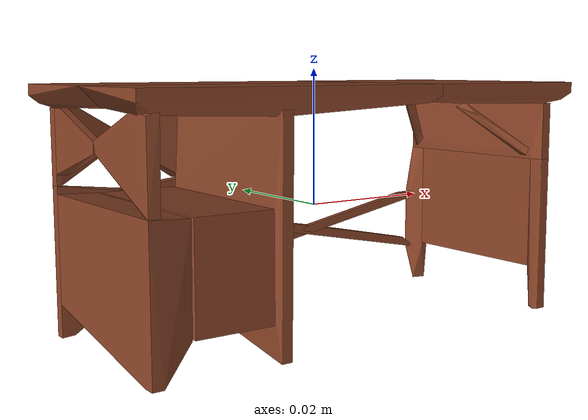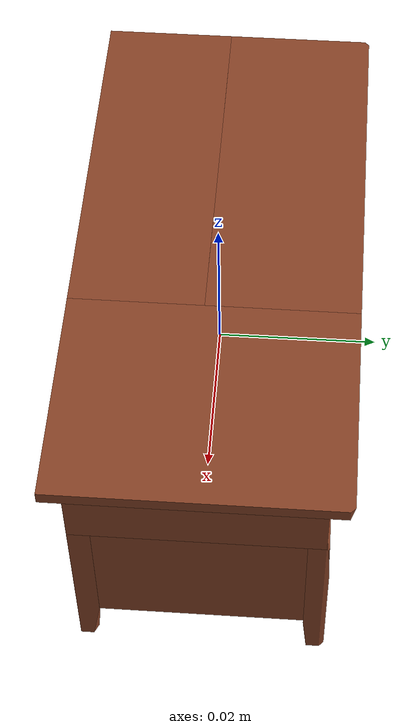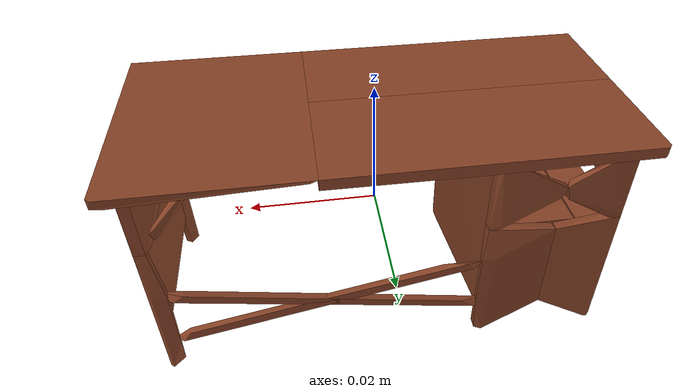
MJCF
<mujoco model="shapenetsem24">
  <asset>
    <mesh file="meshes/shapenetsem24/shapenetsem24_0.stl" name="shapenetsem24_0" scale="0.85 0.85 0.85"/>
    <mesh file="meshes/shapenetsem24/shapenetsem24_1.stl" name="shapenetsem24_1" scale="0.85 0.85 0.85"/>
    <mesh file="meshes/shapenetsem24/shapenetsem24_2.stl" name="shapenetsem24_2" scale="0.85 0.85 0.85"/>
    <mesh file="meshes/shapenetsem24/shapenetsem24_3.stl" name="shapenetsem24_3" scale="0.85 0.85 0.85"/>
    <mesh file="meshes/shapenetsem24/shapenetsem24_4.stl" name="shapenetsem24_4" scale="0.85 0.85 0.85"/>
    <mesh file="meshes/shapenetsem24/shapenetsem24_5.stl" name="shapenetsem24_5" scale="0.85 0.85 0.85"/>
    <mesh file="meshes/shapenetsem24/shapenetsem24_6.stl" name="shapenetsem24_6" scale="0.85 0.85 0.85"/>
    <mesh file="meshes/shapenetsem24/shapenetsem24_7.stl" name="shapenetsem24_7" scale="0.85 0.85 0.85"/>
    <mesh file="meshes/shapenetsem24/shapenetsem24_8.stl" name="shapenetsem24_8" scale="0.85 0.85 0.85"/>
    <mesh file="meshes/shapenetsem24/shapenetsem24_9.stl" name="shapenetsem24_9" scale="0.85 0.85 0.85"/>
    <mesh file="meshes/shapenetsem24/shapenetsem24_10.stl" name="shapenetsem24_10" scale="0.85 0.85 0.85"/>
    <mesh file="meshes/shapenetsem24/shapenetsem24_11.stl" name="shapenetsem24_11" scale="0.85 0.85 0.85"/>
    <mesh file="meshes/shapenetsem24/shapenetsem24_12.stl" name="shapenetsem24_12" scale="0.85 0.85 0.85"/>
    <mesh file="meshes/shapenetsem24/shapenetsem24_13.stl" name="shapenetsem24_13" scale="0.85 0.85 0.85"/>
    <mesh file="meshes/shapenetsem24/shapenetsem24_14.stl" name="shapenetsem24_14" scale="0.85 0.85 0.85"/>
    <mesh file="meshes/shapenetsem24/shapenetsem24_15.stl" name="shapenetsem24_15" scale="0.85 0.85 0.85"/>
    <mesh file="meshes/shapenetsem24/shapenetsem24_16.stl" name="shapenetsem24_16" scale="0.85 0.85 0.85"/>
    <mesh file="meshes/shapenetsem24/shapenetsem24_17.stl" name="shapenetsem24_17" scale="0.85 0.85 0.85"/>
    <mesh file="meshes/shapenetsem24/shapenetsem24_18.stl" name="shapenetsem24_18" scale="0.85 0.85 0.85"/>
    <mesh file="meshes/shapenetsem24/shapenetsem24_19.stl" name="shapenetsem24_19" scale="0.85 0.85 0.85"/>
    <texture file="../textures/texture24-0.png" type="2d" name="tex-sem24"/>
    <material name="sem24" reflectance="0.7" texrepeat="90 90" texture="tex-sem24" texuniform="true"/>
  </asset>
  <worldbody>
    <body>
      <body name="collision">
        <geom pos="0 0 0" mesh="shapenetsem24_0" type="mesh" solimp="0.998 0.998 0.001" solref="0.001 1" density="100" friction="0.95 0.3 0.1" rgba="0.53 0.26 0.15 1" group="1" condim="4"/>
        <geom pos="0 0 0" mesh="shapenetsem24_1" type="mesh" solimp="0.998 0.998 0.001" solref="0.001 1" density="100" friction="0.95 0.3 0.1" rgba="0.53 0.26 0.15 1" group="1" condim="4"/>
        <geom pos="0 0 0" mesh="shapenetsem24_2" type="mesh" solimp="0.998 0.998 0.001" solref="0.001 1" density="100" friction="0.95 0.3 0.1" rgba="0.53 0.26 0.15 1" group="1" condim="4"/>
        <geom pos="0 0 0" mesh="shapenetsem24_3" type="mesh" solimp="0.998 0.998 0.001" solref="0.001 1" density="100" friction="0.95 0.3 0.1" rgba="0.53 0.26 0.15 1" group="1" condim="4"/>
        <geom pos="0 0 0" mesh="shapenetsem24_4" type="mesh" solimp="0.998 0.998 0.001" solref="0.001 1" density="100" friction="0.95 0.3 0.1" rgba="0.53 0.26 0.15 1" group="1" condim="4"/>
        <geom pos="0 0 0" mesh="shapenetsem24_5" type="mesh" solimp="0.998 0.998 0.001" solref="0.001 1" density="100" friction="0.95 0.3 0.1" rgba="0.53 0.26 0.15 1" group="1" condim="4"/>
        <geom pos="0 0 0" mesh="shapenetsem24_6" type="mesh" solimp="0.998 0.998 0.001" solref="0.001 1" density="100" friction="0.95 0.3 0.1" rgba="0.53 0.26 0.15 1" group="1" condim="4"/>
        <geom pos="0 0 0" mesh="shapenetsem24_7" type="mesh" solimp="0.998 0.998 0.001" solref="0.001 1" density="100" friction="0.95 0.3 0.1" rgba="0.53 0.26 0.15 1" group="1" condim="4"/>
        <geom pos="0 0 0" mesh="shapenetsem24_8" type="mesh" solimp="0.998 0.998 0.001" solref="0.001 1" density="100" friction="0.95 0.3 0.1" rgba="0.53 0.26 0.15 1" group="1" condim="4"/>
        <geom pos="0 0 0" mesh="shapenetsem24_9" type="mesh" solimp="0.998 0.998 0.001" solref="0.001 1" density="100" friction="0.95 0.3 0.1" rgba="0.53 0.26 0.15 1" group="1" condim="4"/>
        <geom pos="0 0 0" mesh="shapenetsem24_10" type="mesh" solimp="0.998 0.998 0.001" solref="0.001 1" density="100" friction="0.95 0.3 0.1" rgba="0.53 0.26 0.15 1" group="1" condim="4"/>
        <geom pos="0 0 0" mesh="shapenetsem24_11" type="mesh" solimp="0.998 0.998 0.001" solref="0.001 1" density="100" friction="0.95 0.3 0.1" rgba="0.53 0.26 0.15 1" group="1" condim="4"/>
        <geom pos="0 0 0" mesh="shapenetsem24_12" type="mesh" solimp="0.998 0.998 0.001" solref="0.001 1" density="100" friction="0.95 0.3 0.1" rgba="0.53 0.26 0.15 1" group="1" condim="4"/>
        <geom pos="0 0 0" mesh="shapenetsem24_13" type="mesh" solimp="0.998 0.998 0.001" solref="0.001 1" density="100" friction="0.95 0.3 0.1" rgba="0.53 0.26 0.15 1" group="1" condim="4"/>
        <geom pos="0 0 0" mesh="shapenetsem24_14" type="mesh" solimp="0.998 0.998 0.001" solref="0.001 1" density="100" friction="0.95 0.3 0.1" rgba="0.53 0.26 0.15 1" group="1" condim="4"/>
        <geom pos="0 0 0" mesh="shapenetsem24_15" type="mesh" solimp="0.998 0.998 0.001" solref="0.001 1" density="100" friction="0.95 0.3 0.1" rgba="0.53 0.26 0.15 1" group="1" condim="4"/>
        <geom pos="0 0 0" mesh="shapenetsem24_16" type="mesh" solimp="0.998 0.998 0.001" solref="0.001 1" density="100" friction="0.95 0.3 0.1" rgba="0.53 0.26 0.15 1" group="1" condim="4"/>
        <geom pos="0 0 0" mesh="shapenetsem24_17" type="mesh" solimp="0.998 0.998 0.001" solref="0.001 1" density="100" friction="0.95 0.3 0.1" rgba="0.53 0.26 0.15 1" group="1" condim="4"/>
        <geom pos="0 0 0" mesh="shapenetsem24_18" type="mesh" solimp="0.998 0.998 0.001" solref="0.001 1" density="100" friction="0.95 0.3 0.1" rgba="0.53 0.26 0.15 1" group="1" condim="4"/>
        <geom pos="0 0 0" mesh="shapenetsem24_19" type="mesh" solimp="0.998 0.998 0.001" solref="0.001 1" density="100" friction="0.95 0.3 0.1" rgba="0.53 0.26 0.15 1" group="1" condim="4"/>
      </body>
      <body name="visual">
        <geom pos="0 0 0" mesh="shapenetsem24_0" type="mesh" rgba="0 1 0 1" conaffinity="0" contype="0" group="0" mass="0.0001"/>
        <geom pos="0 0 0" mesh="shapenetsem24_1" type="mesh" rgba="0 1 0 1" conaffinity="0" contype="0" group="0" mass="0.0001"/>
        <geom pos="0 0 0" mesh="shapenetsem24_2" type="mesh" rgba="0 1 0 1" conaffinity="0" contype="0" group="0" mass="0.0001"/>
        <geom pos="0 0 0" mesh="shapenetsem24_3" type="mesh" rgba="0 1 0 1" conaffinity="0" contype="0" group="0" mass="0.0001"/>
        <geom pos="0 0 0" mesh="shapenetsem24_4" type="mesh" rgba="0 1 0 1" conaffinity="0" contype="0" group="0" mass="0.0001"/>
        <geom pos="0 0 0" mesh="shapenetsem24_5" type="mesh" rgba="0 1 0 1" conaffinity="0" contype="0" group="0" mass="0.0001"/>
        <geom pos="0 0 0" mesh="shapenetsem24_6" type="mesh" rgba="0 1 0 1" conaffinity="0" contype="0" group="0" mass="0.0001"/>
        <geom pos="0 0 0" mesh="shapenetsem24_7" type="mesh" rgba="0 1 0 1" conaffinity="0" contype="0" group="0" mass="0.0001"/>
        <geom pos="0 0 0" mesh="shapenetsem24_8" type="mesh" rgba="0 1 0 1" conaffinity="0" contype="0" group="0" mass="0.0001"/>
        <geom pos="0 0 0" mesh="shapenetsem24_9" type="mesh" rgba="0 1 0 1" conaffinity="0" contype="0" group="0" mass="0.0001"/>
        <geom pos="0 0 0" mesh="shapenetsem24_10" type="mesh" rgba="0 1 0 1" conaffinity="0" contype="0" group="0" mass="0.0001"/>
        <geom pos="0 0 0" mesh="shapenetsem24_11" type="mesh" rgba="0 1 0 1" conaffinity="0" contype="0" group="0" mass="0.0001"/>
        <geom pos="0 0 0" mesh="shapenetsem24_12" type="mesh" rgba="0 1 0 1" conaffinity="0" contype="0" group="0" mass="0.0001"/>
        <geom pos="0 0 0" mesh="shapenetsem24_13" type="mesh" rgba="0 1 0 1" conaffinity="0" contype="0" group="0" mass="0.0001"/>
        <geom pos="0 0 0" mesh="shapenetsem24_14" type="mesh" rgba="0 1 0 1" conaffinity="0" contype="0" group="0" mass="0.0001"/>
        <geom pos="0 0 0" mesh="shapenetsem24_15" type="mesh" rgba="0 1 0 1" conaffinity="0" contype="0" group="0" mass="0.0001"/>
        <geom pos="0 0 0" mesh="shapenetsem24_16" type="mesh" rgba="0 1 0 1" conaffinity="0" contype="0" group="0" mass="0.0001"/>
        <geom pos="0 0 0" mesh="shapenetsem24_17" type="mesh" rgba="0 1 0 1" conaffinity="0" contype="0" group="0" mass="0.0001"/>
        <geom pos="0 0 0" mesh="shapenetsem24_18" type="mesh" rgba="0 1 0 1" conaffinity="0" contype="0" group="0" mass="0.0001"/>
        <geom pos="0 0 0" mesh="shapenetsem24_19" type="mesh" rgba="0 1 0 1" conaffinity="0" contype="0" group="0" mass="0.0001"/>
      </body>
      <site rgba="0 0 0 0" size="0.005" pos="0 0 -0.06" name="bottom_site"/>
      <site rgba="0 0 0 0" size="0.005" pos="0 0 0.04" name="top_site"/>
      <site rgba="0 0 0 0" size="0.005" pos="0.025 0.025 0" name="horizontal_radius_site"/>
    </body>
  </worldbody>
</mujoco>
